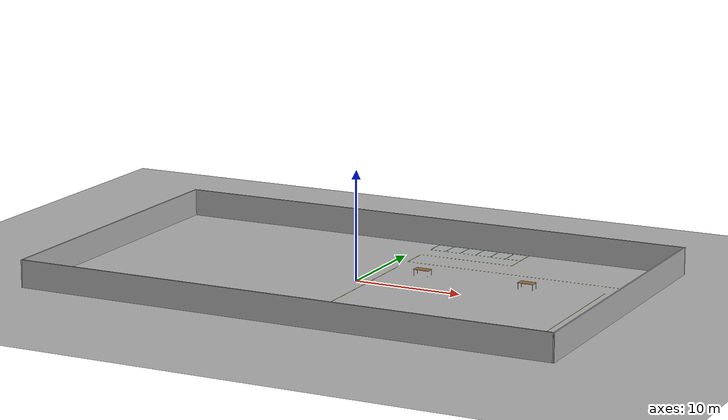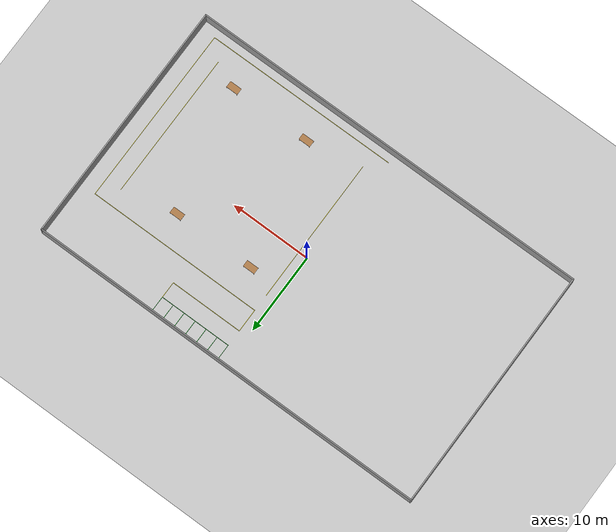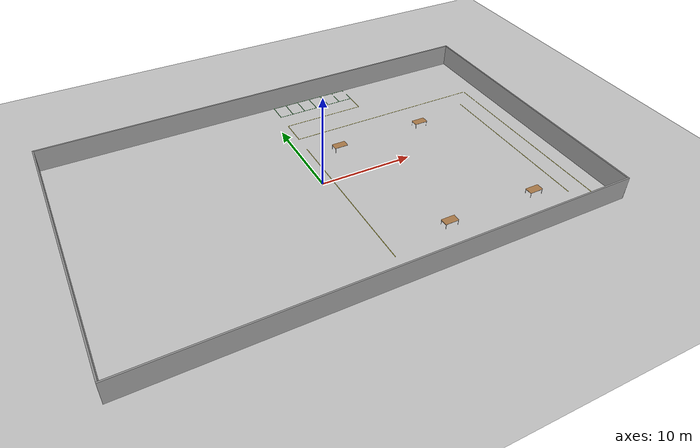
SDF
<sdf version="1.6">
 <world name="default">
  <model name="ground_plane">
   <static>1</static>
   <link name="link">
    <collision name="collision">
     <geometry><plane><normal>0 0 1</normal><size>100 100</size></plane></geometry>
     <surface><friction><ode><mu>100</mu><mu2>50</mu2></ode></friction></surface>
    </collision>
    <visual name="visual">
     <cast_shadows>0</cast_shadows>
     <geometry><plane><normal>0 0 1</normal><size>100 100</size></plane></geometry>
     <material>
      <script><uri>file://media/materials/scripts/gazebo.material</uri><name>Gazebo/Grey</name></script>
     </material>
    </visual>
   </link>
  </model>
  <model name="factoryWall">
   <link name="Wall_0">
    <collision name="Wall_0_Collision">
     <geometry><box><size>30.15 0.15 2.5</size></box></geometry>
     <pose>0 0 1.25 0 -0 0</pose>
    </collision>
    <visual name="Wall_0_Visual">
     <pose>0 0 1.25 0 -0 0</pose>
     <geometry><box><size>30.15 0.15 2.5</size></box></geometry>
     <material>
      <script><uri>file://media/materials/scripts/gazebo.material</uri><name>Gazebo/Grey</name></script>
      <ambient>1 1 1 1</ambient>
     </material>
     <meta><layer>0</layer></meta>
    </visual>
    <pose>25 0 0 0 -0 1.5708</pose>
   </link>
   <link name="Wall_2">
    <collision name="Wall_2_Collision">
     <geometry><box><size>30.15 0.15 2.5</size></box></geometry>
     <pose>0 0 1.25 0 -0 0</pose>
    </collision>
    <visual name="Wall_2_Visual">
     <pose>0 0 1.25 0 -0 0</pose>
     <geometry><box><size>30.15 0.15 2.5</size></box></geometry>
     <material>
      <script><uri>file://media/materials/scripts/gazebo.material</uri><name>Gazebo/Grey</name></script>
      <ambient>1 1 1 1</ambient>
     </material>
     <meta><layer>0</layer></meta>
    </visual>
    <pose>-25 0 0 0 -0 1.5708</pose>
   </link>
   <link name="Wall_4">
    <collision name="Wall_4_Collision">
     <geometry><box><size>50.15 0.15 2.5</size></box></geometry>
     <pose>0 0 1.25 0 -0 0</pose>
    </collision>
    <visual name="Wall_4_Visual">
     <pose>0 0 1.25 0 -0 0</pose>
     <geometry><box><size>50.15 0.15 2.5</size></box></geometry>
     <material>
      <script><uri>file://media/materials/scripts/gazebo.material</uri><name>Gazebo/Grey</name></script>
      <ambient>1 1 1 1</ambient>
     </material>
     <meta><layer>0</layer></meta>
    </visual>
    <pose>0 15 0 0 -0 0</pose>
   </link>
   <link name="Wall_6">
    <collision name="Wall_6_Collision">
     <geometry><box><size>50.15 0.15 2.5</size></box></geometry>
     <pose>0 0 1.25 0 -0 0</pose>
    </collision>
    <visual name="Wall_6_Visual">
     <pose>0 0 1.25 0 -0 0</pose>
     <geometry><box><size>50.15 0.15 2.5</size></box></geometry>
     <material>
      <script><uri>file://media/materials/scripts/gazebo.material</uri><name>Gazebo/Grey</name></script>
      <ambient>1 1 1 1</ambient>
     </material>
     <meta><layer>0</layer></meta>
    </visual>
    <pose>0 -15 0 0 -0 0</pose>
   </link>
   <static>1</static>
  </model>
  <model name="line18m_1">
   <link name="link_1">
    <inertial>
     <mass>1</mass>
     <inertia>
      <ixx>0.166667</ixx>
      <ixy>0</ixy>
      <ixz>0</ixz>
      <iyy>0.166667</iyy>
      <iyz>0</iyz>
      <izz>0.166667</izz>
     </inertia>
    </inertial>
    <visual name="visual">
     <geometry><box><size>0.05 18 0.001</size></box></geometry>
     <material>
      <lighting>1</lighting>
      <script><uri>file://media/materials/scripts/gazebo.material</uri><name>Gazebo/Yellow</name></script>
     </material>
    </visual>
    <collision name="collision">
     <geometry><box><size>0.05 18 0.001</size></box></geometry>
     <surface>
      <friction>
       <ode><mu>1</mu><mu2>1</mu2><fdir1>0 0 0</fdir1><slip1>0</slip1><slip2>0</slip2></ode>
       <torsional>
        <coefficient>1</coefficient>
        <patch_radius>0</patch_radius>
        <surface_radius>0</surface_radius>
        <use_patch_radius>1</use_patch_radius>
        <ode><slip>0</slip></ode>
       </torsional>
      </friction>
      <bounce><restitution_coefficient>0</restitution_coefficient><threshold>1e+06</threshold></bounce>
      <contact>
       <collide_without_contact>0</collide_without_contact>
       <collide_without_contact_bitmask>1</collide_without_contact_bitmask>
       <collide_bitmask>1</collide_bitmask>
       <ode>
        <soft_cfm>0</soft_cfm>
        <soft_erp>0.2</soft_erp>
        <kp>1e+13</kp>
        <kd>1</kd>
        <max_vel>0.01</max_vel>
        <min_depth>0</min_depth>
       </ode>
       <bullet>
        <split_impulse>1</split_impulse>
        <split_impulse_penetration_threshold>-0.01</split_impulse_penetration_threshold>
        <soft_cfm>0</soft_cfm>
        <soft_erp>0.2</soft_erp>
        <kp>1e+13</kp>
        <kd>1</kd>
       </bullet>
      </contact>
     </surface>
    </collision>
   </link>
   <static>1</static>
   <pose>1.13446 -2.97176 0 0 -0 0</pose>
  </model>
  <model name="line18m_2">
   <link name="link_1">
    <inertial>
     <mass>1</mass>
     <inertia>
      <ixx>0.166667</ixx>
      <ixy>0</ixy>
      <ixz>0</ixz>
      <iyy>0.166667</iyy>
      <iyz>0</iyz>
      <izz>0.166667</izz>
     </inertia>
    </inertial>
    <visual name="visual">
     <geometry><box><size>0.05 18 0.001</size></box></geometry>
     <material>
      <lighting>1</lighting>
      <script><uri>file://media/materials/scripts/gazebo.material</uri><name>Gazebo/Yellow</name></script>
     </material>
    </visual>
    <collision name="collision">
     <geometry><box><size>0.05 18 0.001</size></box></geometry>
     <surface>
      <friction>
       <ode><mu>1</mu><mu2>1</mu2><fdir1>0 0 0</fdir1><slip1>0</slip1><slip2>0</slip2></ode>
       <torsional>
        <coefficient>1</coefficient>
        <patch_radius>0</patch_radius>
        <surface_radius>0</surface_radius>
        <use_patch_radius>1</use_patch_radius>
        <ode><slip>0</slip></ode>
       </torsional>
      </friction>
      <bounce><restitution_coefficient>0</restitution_coefficient><threshold>1e+06</threshold></bounce>
      <contact>
       <collide_without_contact>0</collide_without_contact>
       <collide_without_contact_bitmask>1</collide_without_contact_bitmask>
       <collide_bitmask>1</collide_bitmask>
       <ode>
        <soft_cfm>0</soft_cfm>
        <soft_erp>0.2</soft_erp>
        <kp>1e+13</kp>
        <kd>1</kd>
        <max_vel>0.01</max_vel>
        <min_depth>0</min_depth>
       </ode>
       <bullet>
        <split_impulse>1</split_impulse>
        <split_impulse_penetration_threshold>-0.01</split_impulse_penetration_threshold>
        <soft_cfm>0</soft_cfm>
        <soft_erp>0.2</soft_erp>
        <kp>1e+13</kp>
        <kd>1</kd>
       </bullet>
      </contact>
     </surface>
    </collision>
   </link>
   <static>1</static>
   <pose>21.0899 -2.96828 0 0 -0 0</pose>
  </model>
  <model name="line2m_4">
   <link name="link_0">
    <inertial>
     <mass>1</mass>
     <inertia>
      <ixx>0.166667</ixx>
      <ixy>0</ixy>
      <ixz>0</ixz>
      <iyy>0.166667</iyy>
      <iyz>0</iyz>
      <izz>0.166667</izz>
     </inertia>
    </inertial>
    <visual name="visual">
     <geometry><box><size>2 0.05 0.001</size></box></geometry>
     <material>
      <lighting>1</lighting>
      <script><uri>file://media/materials/scripts/gazebo.material</uri><name>Gazebo/Yellow</name></script>
     </material>
    </visual>
    <collision name="collision">
     <geometry><box><size>2 0.05 0.001</size></box></geometry>
     <surface>
      <friction>
       <ode><mu>1</mu><mu2>1</mu2><fdir1>0 0 0</fdir1><slip1>0</slip1><slip2>0</slip2></ode>
       <torsional>
        <coefficient>1</coefficient>
        <patch_radius>0</patch_radius>
        <surface_radius>0</surface_radius>
        <use_patch_radius>1</use_patch_radius>
        <ode><slip>0</slip></ode>
       </torsional>
      </friction>
      <bounce><restitution_coefficient>0</restitution_coefficient><threshold>1e+06</threshold></bounce>
      <contact>
       <collide_without_contact>0</collide_without_contact>
       <collide_without_contact_bitmask>1</collide_without_contact_bitmask>
       <collide_bitmask>1</collide_bitmask>
       <ode>
        <soft_cfm>0</soft_cfm>
        <soft_erp>0.2</soft_erp>
        <kp>1e+13</kp>
        <kd>1</kd>
        <max_vel>0.01</max_vel>
        <min_depth>0</min_depth>
       </ode>
       <bullet>
        <split_impulse>1</split_impulse>
        <split_impulse_penetration_threshold>-0.01</split_impulse_penetration_threshold>
        <soft_cfm>0</soft_cfm>
        <soft_erp>0.2</soft_erp>
        <kp>1e+13</kp>
        <kd>1</kd>
       </bullet>
      </contact>
     </surface>
    </collision>
   </link>
   <static>1</static>
   <pose>0.123613 -13.9727 0 0 -0 0</pose>
  </model>
  <model name="line22m_0">
   <link name="link_2">
    <inertial>
     <mass>1</mass>
     <inertia>
      <ixx>0.166667</ixx>
      <ixy>0</ixy>
      <ixz>0</ixz>
      <iyy>0.166667</iyy>
      <iyz>0</iyz>
      <izz>0.166667</izz>
     </inertia>
    </inertial>
    <visual name="visual">
     <geometry><box><size>0.05 22 0.001</size></box></geometry>
     <material>
      <lighting>1</lighting>
      <script><uri>file://media/materials/scripts/gazebo.material</uri><name>Gazebo/Yellow</name></script>
     </material>
    </visual>
    <collision name="collision">
     <geometry><box><size>0.05 22 0.001</size></box></geometry>
     <surface>
      <friction>
       <ode><mu>1</mu><mu2>1</mu2><fdir1>0 0 0</fdir1><slip1>0</slip1><slip2>0</slip2></ode>
       <torsional>
        <coefficient>1</coefficient>
        <patch_radius>0</patch_radius>
        <surface_radius>0</surface_radius>
        <use_patch_radius>1</use_patch_radius>
        <ode><slip>0</slip></ode>
       </torsional>
      </friction>
      <bounce><restitution_coefficient>0</restitution_coefficient><threshold>1e+06</threshold></bounce>
      <contact>
       <collide_without_contact>0</collide_without_contact>
       <collide_without_contact_bitmask>1</collide_without_contact_bitmask>
       <collide_bitmask>1</collide_bitmask>
       <ode>
        <soft_cfm>0</soft_cfm>
        <soft_erp>0.2</soft_erp>
        <kp>1e+13</kp>
        <kd>1</kd>
        <max_vel>0.01</max_vel>
        <min_depth>0</min_depth>
       </ode>
       <bullet>
        <split_impulse>1</split_impulse>
        <split_impulse_penetration_threshold>-0.01</split_impulse_penetration_threshold>
        <soft_cfm>0</soft_cfm>
        <soft_erp>0.2</soft_erp>
        <kp>1e+13</kp>
        <kd>1</kd>
       </bullet>
      </contact>
     </surface>
    </collision>
   </link>
   <static>1</static>
   <pose>12.1233 -13.9726 0 0 -0 1.5708</pose>
  </model>
  <model name="line22m_1">
   <link name="link_2">
    <inertial>
     <mass>1</mass>
     <inertia>
      <ixx>0.166667</ixx>
      <ixy>0</ixy>
      <ixz>0</ixz>
      <iyy>0.166667</iyy>
      <iyz>0</iyz>
      <izz>0.166667</izz>
     </inertia>
    </inertial>
    <visual name="visual">
     <geometry><box><size>0.05 22 0.001</size></box></geometry>
     <material>
      <lighting>1</lighting>
      <script><uri>file://media/materials/scripts/gazebo.material</uri><name>Gazebo/Yellow</name></script>
     </material>
    </visual>
    <collision name="collision">
     <geometry><box><size>0.05 22 0.001</size></box></geometry>
     <surface>
      <friction>
       <ode><mu>1</mu><mu2>1</mu2><fdir1>0 0 0</fdir1><slip1>0</slip1><slip2>0</slip2></ode>
       <torsional>
        <coefficient>1</coefficient>
        <patch_radius>0</patch_radius>
        <surface_radius>0</surface_radius>
        <use_patch_radius>1</use_patch_radius>
        <ode><slip>0</slip></ode>
       </torsional>
      </friction>
      <bounce><restitution_coefficient>0</restitution_coefficient><threshold>1e+06</threshold></bounce>
      <contact>
       <collide_without_contact>0</collide_without_contact>
       <collide_without_contact_bitmask>1</collide_without_contact_bitmask>
       <collide_bitmask>1</collide_bitmask>
       <ode>
        <soft_cfm>0</soft_cfm>
        <soft_erp>0.2</soft_erp>
        <kp>1e+13</kp>
        <kd>1</kd>
        <max_vel>0.01</max_vel>
        <min_depth>0</min_depth>
       </ode>
       <bullet>
        <split_impulse>1</split_impulse>
        <split_impulse_penetration_threshold>-0.01</split_impulse_penetration_threshold>
        <soft_cfm>0</soft_cfm>
        <soft_erp>0.2</soft_erp>
        <kp>1e+13</kp>
        <kd>1</kd>
       </bullet>
      </contact>
     </surface>
    </collision>
   </link>
   <static>1</static>
   <pose>23.0982 -2.94755 0 0 -0 0</pose>
  </model>
  <model name="line22m_2">
   <link name="link_2">
    <inertial>
     <mass>1</mass>
     <inertia>
      <ixx>0.166667</ixx>
      <ixy>0</ixy>
      <ixz>0</ixz>
      <iyy>0.166667</iyy>
      <iyz>0</iyz>
      <izz>0.166667</izz>
     </inertia>
    </inertial>
    <visual name="visual">
     <geometry><box><size>0.05 22 0.001</size></box></geometry>
     <material>
      <lighting>1</lighting>
      <script><uri>file://media/materials/scripts/gazebo.material</uri><name>Gazebo/Yellow</name></script>
     </material>
    </visual>
    <collision name="collision">
     <geometry><box><size>0.05 22 0.001</size></box></geometry>
     <surface>
      <friction>
       <ode><mu>1</mu><mu2>1</mu2><fdir1>0 0 0</fdir1><slip1>0</slip1><slip2>0</slip2></ode>
       <torsional>
        <coefficient>1</coefficient>
        <patch_radius>0</patch_radius>
        <surface_radius>0</surface_radius>
        <use_patch_radius>1</use_patch_radius>
        <ode><slip>0</slip></ode>
       </torsional>
      </friction>
      <bounce><restitution_coefficient>0</restitution_coefficient><threshold>1e+06</threshold></bounce>
      <contact>
       <collide_without_contact>0</collide_without_contact>
       <collide_without_contact_bitmask>1</collide_without_contact_bitmask>
       <collide_bitmask>1</collide_bitmask>
       <ode>
        <soft_cfm>0</soft_cfm>
        <soft_erp>0.2</soft_erp>
        <kp>1e+13</kp>
        <kd>1</kd>
        <max_vel>0.01</max_vel>
        <min_depth>0</min_depth>
       </ode>
       <bullet>
        <split_impulse>1</split_impulse>
        <split_impulse_penetration_threshold>-0.01</split_impulse_penetration_threshold>
        <soft_cfm>0</soft_cfm>
        <soft_erp>0.2</soft_erp>
        <kp>1e+13</kp>
        <kd>1</kd>
       </bullet>
      </contact>
     </surface>
    </collision>
   </link>
   <static>1</static>
   <pose>12.1232 8.07731 0 0 -0 1.5708</pose>
  </model>
  <model name="batteryStation">
   <link name="link_3">
    <inertial>
     <mass>1</mass>
     <inertia>
      <ixx>0.166667</ixx>
      <ixy>0</ixy>
      <ixz>0</ixz>
      <iyy>0.166667</iyy>
      <iyz>0</iyz>
      <izz>0.166667</izz>
     </inertia>
    </inertial>
    <visual name="visual">
     <pose>1 0 0 0 -0 0</pose>
     <geometry><box><size>0.05 9.05 0.001</size></box></geometry>
     <material>
      <lighting>1</lighting>
      <script><uri>file://media/materials/scripts/gazebo.material</uri><name>Gazebo/Green</name></script>
     </material>
    </visual>
    <visual name="ModelPreview_6::link_3::visual_1">
     <pose>-1 0 0 0 -0 0</pose>
     <geometry><box><size>0.05 9.05 0.001</size></box></geometry>
     <material>
      <lighting>1</lighting>
      <script><uri>file://media/materials/scripts/gazebo.material</uri><name>Gazebo/Green</name></script>
     </material>
    </visual>
    <visual name="ModelPreview_6::link_3::visual_2">
     <pose>0 4.5 0 0 -0 0</pose>
     <geometry><box><size>2 0.05 0.001</size></box></geometry>
     <material>
      <lighting>1</lighting>
      <script><uri>file://media/materials/scripts/gazebo.material</uri><name>Gazebo/Green</name></script>
     </material>
    </visual>
    <visual name="ModelPreview_6::link_3::visual_3">
     <pose>0 -4.5 0 0 -0 0</pose>
     <geometry><box><size>2 0.05 0.001</size></box></geometry>
     <material>
      <lighting>1</lighting>
      <script><uri>file://media/materials/scripts/gazebo.material</uri><name>Gazebo/Green</name></script>
     </material>
    </visual>
    <visual name="ModelPreview_6::link_3::visual_4">
     <pose>0 -3 0 0 -0 0</pose>
     <geometry><box><size>2 0.05 0.001</size></box></geometry>
     <material>
      <lighting>1</lighting>
      <script><uri>file://media/materials/scripts/gazebo.material</uri><name>Gazebo/Green</name></script>
     </material>
    </visual>
    <visual name="ModelPreview_6::link_3::visual_5">
     <pose>0 -1.5 0 0 -0 0</pose>
     <geometry><box><size>2 0.05 0.001</size></box></geometry>
     <material>
      <lighting>1</lighting>
      <script><uri>file://media/materials/scripts/gazebo.material</uri><name>Gazebo/Green</name></script>
     </material>
    </visual>
    <visual name="ModelPreview_6::link_3::visual_6">
     <geometry><box><size>2 0.05 0.001</size></box></geometry>
     <material>
      <lighting>1</lighting>
      <script><uri>file://media/materials/scripts/gazebo.material</uri><name>Gazebo/Green</name></script>
     </material>
    </visual>
    <visual name="ModelPreview_6::link_3::visual_7">
     <pose>0 1.5 0 0 -0 0</pose>
     <geometry><box><size>2 0.05 0.001</size></box></geometry>
     <material>
      <lighting>1</lighting>
      <script><uri>file://media/materials/scripts/gazebo.material</uri><name>Gazebo/Green</name></script>
     </material>
    </visual>
    <visual name="ModelPreview_6::link_3::visual_8">
     <pose>0 3 0 0 -0 0</pose>
     <geometry><box><size>2 0.05 0.001</size></box></geometry>
     <material>
      <lighting>1</lighting>
      <script><uri>file://media/materials/scripts/gazebo.material</uri><name>Gazebo/Green</name></script>
     </material>
    </visual>
    <collision name="collision">
     <pose>1 0 0 0 -0 0</pose>
     <geometry><box><size>0.05 9 0.001</size></box></geometry>
     <surface>
      <friction>
       <ode><mu>1</mu><mu2>1</mu2><fdir1>0 0 0</fdir1><slip1>0</slip1><slip2>0</slip2></ode>
       <torsional>
        <coefficient>1</coefficient>
        <patch_radius>0</patch_radius>
        <surface_radius>0</surface_radius>
        <use_patch_radius>1</use_patch_radius>
        <ode><slip>0</slip></ode>
       </torsional>
      </friction>
      <bounce><restitution_coefficient>0</restitution_coefficient><threshold>1e+06</threshold></bounce>
      <contact>
       <collide_without_contact>0</collide_without_contact>
       <collide_without_contact_bitmask>1</collide_without_contact_bitmask>
       <collide_bitmask>1</collide_bitmask>
       <ode>
        <soft_cfm>0</soft_cfm>
        <soft_erp>0.2</soft_erp>
        <kp>1e+13</kp>
        <kd>1</kd>
        <max_vel>0.01</max_vel>
        <min_depth>0</min_depth>
       </ode>
       <bullet>
        <split_impulse>1</split_impulse>
        <split_impulse_penetration_threshold>-0.01</split_impulse_penetration_threshold>
        <soft_cfm>0</soft_cfm>
        <soft_erp>0.2</soft_erp>
        <kp>1e+13</kp>
        <kd>1</kd>
       </bullet>
      </contact>
     </surface>
    </collision>
    <collision name="collision_1">
     <pose>-1 0 0 0 -0 0</pose>
     <geometry><box><size>0.05 9 0.001</size></box></geometry>
     <surface>
      <friction>
       <ode><mu>1</mu><mu2>1</mu2><fdir1>0 0 0</fdir1><slip1>0</slip1><slip2>0</slip2></ode>
       <torsional>
        <coefficient>1</coefficient>
        <patch_radius>0</patch_radius>
        <surface_radius>0</surface_radius>
        <use_patch_radius>1</use_patch_radius>
        <ode><slip>0</slip></ode>
       </torsional>
      </friction>
      <bounce><restitution_coefficient>0</restitution_coefficient><threshold>1e+06</threshold></bounce>
      <contact>
       <collide_without_contact>0</collide_without_contact>
       <collide_without_contact_bitmask>1</collide_without_contact_bitmask>
       <collide_bitmask>1</collide_bitmask>
       <ode>
        <soft_cfm>0</soft_cfm>
        <soft_erp>0.2</soft_erp>
        <kp>1e+13</kp>
        <kd>1</kd>
        <max_vel>0.01</max_vel>
        <min_depth>0</min_depth>
       </ode>
       <bullet>
        <split_impulse>1</split_impulse>
        <split_impulse_penetration_threshold>-0.01</split_impulse_penetration_threshold>
        <soft_cfm>0</soft_cfm>
        <soft_erp>0.2</soft_erp>
        <kp>1e+13</kp>
        <kd>1</kd>
       </bullet>
      </contact>
     </surface>
    </collision>
    <collision name="collision_2">
     <pose>0 4.5 0 0 -0 0</pose>
     <geometry><box><size>2 0.05 0.001</size></box></geometry>
     <surface>
      <friction>
       <ode><mu>1</mu><mu2>1</mu2><fdir1>0 0 0</fdir1><slip1>0</slip1><slip2>0</slip2></ode>
       <torsional>
        <coefficient>1</coefficient>
        <patch_radius>0</patch_radius>
        <surface_radius>0</surface_radius>
        <use_patch_radius>1</use_patch_radius>
        <ode><slip>0</slip></ode>
       </torsional>
      </friction>
      <bounce><restitution_coefficient>0</restitution_coefficient><threshold>1e+06</threshold></bounce>
      <contact>
       <collide_without_contact>0</collide_without_contact>
       <collide_without_contact_bitmask>1</collide_without_contact_bitmask>
       <collide_bitmask>1</collide_bitmask>
       <ode>
        <soft_cfm>0</soft_cfm>
        <soft_erp>0.2</soft_erp>
        <kp>1e+13</kp>
        <kd>1</kd>
        <max_vel>0.01</max_vel>
        <min_depth>0</min_depth>
       </ode>
       <bullet>
        <split_impulse>1</split_impulse>
        <split_impulse_penetration_threshold>-0.01</split_impulse_penetration_threshold>
        <soft_cfm>0</soft_cfm>
        <soft_erp>0.2</soft_erp>
        <kp>1e+13</kp>
        <kd>1</kd>
       </bullet>
      </contact>
     </surface>
    </collision>
    <collision name="collision_3">
     <pose>0 3 0 0 -0 0</pose>
     <geometry><box><size>2 0.05 0.001</size></box></geometry>
     <surface>
      <friction>
       <ode><mu>1</mu><mu2>1</mu2><fdir1>0 0 0</fdir1><slip1>0</slip1><slip2>0</slip2></ode>
       <torsional>
        <coefficient>1</coefficient>
        <patch_radius>0</patch_radius>
        <surface_radius>0</surface_radius>
        <use_patch_radius>1</use_patch_radius>
        <ode><slip>0</slip></ode>
       </torsional>
      </friction>
      <bounce><restitution_coefficient>0</restitution_coefficient><threshold>1e+06</threshold></bounce>
      <contact>
       <collide_without_contact>0</collide_without_contact>
       <collide_without_contact_bitmask>1</collide_without_contact_bitmask>
       <collide_bitmask>1</collide_bitmask>
       <ode>
        <soft_cfm>0</soft_cfm>
        <soft_erp>0.2</soft_erp>
        <kp>1e+13</kp>
        <kd>1</kd>
        <max_vel>0.01</max_vel>
        <min_depth>0</min_depth>
       </ode>
       <bullet>
        <split_impulse>1</split_impulse>
        <split_impulse_penetration_threshold>-0.01</split_impulse_penetration_threshold>
        <soft_cfm>0</soft_cfm>
        <soft_erp>0.2</soft_erp>
        <kp>1e+13</kp>
        <kd>1</kd>
       </bullet>
      </contact>
     </surface>
    </collision>
    <collision name="collision_4">
     <pose>0 1.5 0 0 -0 0</pose>
     <geometry><box><size>2 0.05 0.001</size></box></geometry>
     <surface>
      <friction>
       <ode><mu>1</mu><mu2>1</mu2><fdir1>0 0 0</fdir1><slip1>0</slip1><slip2>0</slip2></ode>
       <torsional>
        <coefficient>1</coefficient>
        <patch_radius>0</patch_radius>
        <surface_radius>0</surface_radius>
        <use_patch_radius>1</use_patch_radius>
        <ode><slip>0</slip></ode>
       </torsional>
      </friction>
      <bounce><restitution_coefficient>0</restitution_coefficient><threshold>1e+06</threshold></bounce>
      <contact>
       <collide_without_contact>0</collide_without_contact>
       <collide_without_contact_bitmask>1</collide_without_contact_bitmask>
       <collide_bitmask>1</collide_bitmask>
       <ode>
        <soft_cfm>0</soft_cfm>
        <soft_erp>0.2</soft_erp>
        <kp>1e+13</kp>
        <kd>1</kd>
        <max_vel>0.01</max_vel>
        <min_depth>0</min_depth>
       </ode>
       <bullet>
        <split_impulse>1</split_impulse>
        <split_impulse_penetration_threshold>-0.01</split_impulse_penetration_threshold>
        <soft_cfm>0</soft_cfm>
        <soft_erp>0.2</soft_erp>
        <kp>1e+13</kp>
        <kd>1</kd>
       </bullet>
      </contact>
     </surface>
    </collision>
    <collision name="collision_5">
     <geometry><box><size>2 0.05 0.001</size></box></geometry>
     <surface>
      <friction>
       <ode><mu>1</mu><mu2>1</mu2><fdir1>0 0 0</fdir1><slip1>0</slip1><slip2>0</slip2></ode>
       <torsional>
        <coefficient>1</coefficient>
        <patch_radius>0</patch_radius>
        <surface_radius>0</surface_radius>
        <use_patch_radius>1</use_patch_radius>
        <ode><slip>0</slip></ode>
       </torsional>
      </friction>
      <bounce><restitution_coefficient>0</restitution_coefficient><threshold>1e+06</threshold></bounce>
      <contact>
       <collide_without_contact>0</collide_without_contact>
       <collide_without_contact_bitmask>1</collide_without_contact_bitmask>
       <collide_bitmask>1</collide_bitmask>
       <ode>
        <soft_cfm>0</soft_cfm>
        <soft_erp>0.2</soft_erp>
        <kp>1e+13</kp>
        <kd>1</kd>
        <max_vel>0.01</max_vel>
        <min_depth>0</min_depth>
       </ode>
       <bullet>
        <split_impulse>1</split_impulse>
        <split_impulse_penetration_threshold>-0.01</split_impulse_penetration_threshold>
        <soft_cfm>0</soft_cfm>
        <soft_erp>0.2</soft_erp>
        <kp>1e+13</kp>
        <kd>1</kd>
       </bullet>
      </contact>
     </surface>
    </collision>
    <collision name="collision_6">
     <pose>0 -1.5 0 0 -0 0</pose>
     <geometry><box><size>2 0.05 0.001</size></box></geometry>
     <surface>
      <friction>
       <ode><mu>1</mu><mu2>1</mu2><fdir1>0 0 0</fdir1><slip1>0</slip1><slip2>0</slip2></ode>
       <torsional>
        <coefficient>1</coefficient>
        <patch_radius>0</patch_radius>
        <surface_radius>0</surface_radius>
        <use_patch_radius>1</use_patch_radius>
        <ode><slip>0</slip></ode>
       </torsional>
      </friction>
      <bounce><restitution_coefficient>0</restitution_coefficient><threshold>1e+06</threshold></bounce>
      <contact>
       <collide_without_contact>0</collide_without_contact>
       <collide_without_contact_bitmask>1</collide_without_contact_bitmask>
       <collide_bitmask>1</collide_bitmask>
       <ode>
        <soft_cfm>0</soft_cfm>
        <soft_erp>0.2</soft_erp>
        <kp>1e+13</kp>
        <kd>1</kd>
        <max_vel>0.01</max_vel>
        <min_depth>0</min_depth>
       </ode>
       <bullet>
        <split_impulse>1</split_impulse>
        <split_impulse_penetration_threshold>-0.01</split_impulse_penetration_threshold>
        <soft_cfm>0</soft_cfm>
        <soft_erp>0.2</soft_erp>
        <kp>1e+13</kp>
        <kd>1</kd>
       </bullet>
      </contact>
     </surface>
    </collision>
    <collision name="collision_7">
     <pose>0 -3 0 0 -0 0</pose>
     <geometry><box><size>2 0.05 0.001</size></box></geometry>
     <surface>
      <friction>
       <ode><mu>1</mu><mu2>1</mu2><fdir1>0 0 0</fdir1><slip1>0</slip1><slip2>0</slip2></ode>
       <torsional>
        <coefficient>1</coefficient>
        <patch_radius>0</patch_radius>
        <surface_radius>0</surface_radius>
        <use_patch_radius>1</use_patch_radius>
        <ode><slip>0</slip></ode>
       </torsional>
      </friction>
      <bounce><restitution_coefficient>0</restitution_coefficient><threshold>1e+06</threshold></bounce>
      <contact>
       <collide_without_contact>0</collide_without_contact>
       <collide_without_contact_bitmask>1</collide_without_contact_bitmask>
       <collide_bitmask>1</collide_bitmask>
       <ode>
        <soft_cfm>0</soft_cfm>
        <soft_erp>0.2</soft_erp>
        <kp>1e+13</kp>
        <kd>1</kd>
        <max_vel>0.01</max_vel>
        <min_depth>0</min_depth>
       </ode>
       <bullet>
        <split_impulse>1</split_impulse>
        <split_impulse_penetration_threshold>-0.01</split_impulse_penetration_threshold>
        <soft_cfm>0</soft_cfm>
        <soft_erp>0.2</soft_erp>
        <kp>1e+13</kp>
        <kd>1</kd>
       </bullet>
      </contact>
     </surface>
    </collision>
    <collision name="collision_8">
     <pose>0 -4.5 0 0 -0 0</pose>
     <geometry><box><size>2 0.05 0.001</size></box></geometry>
     <surface>
      <friction>
       <ode><mu>1</mu><mu2>1</mu2><fdir1>0 0 0</fdir1><slip1>0</slip1><slip2>0</slip2></ode>
       <torsional>
        <coefficient>1</coefficient>
        <patch_radius>0</patch_radius>
        <surface_radius>0</surface_radius>
        <use_patch_radius>1</use_patch_radius>
        <ode><slip>0</slip></ode>
       </torsional>
      </friction>
      <bounce><restitution_coefficient>0</restitution_coefficient><threshold>1e+06</threshold></bounce>
      <contact>
       <collide_without_contact>0</collide_without_contact>
       <collide_without_contact_bitmask>1</collide_without_contact_bitmask>
       <collide_bitmask>1</collide_bitmask>
       <ode>
        <soft_cfm>0</soft_cfm>
        <soft_erp>0.2</soft_erp>
        <kp>1e+13</kp>
        <kd>1</kd>
        <max_vel>0.01</max_vel>
        <min_depth>0</min_depth>
       </ode>
       <bullet>
        <split_impulse>1</split_impulse>
        <split_impulse_penetration_threshold>-0.01</split_impulse_penetration_threshold>
        <soft_cfm>0</soft_cfm>
        <soft_erp>0.2</soft_erp>
        <kp>1e+13</kp>
        <kd>1</kd>
       </bullet>
      </contact>
     </surface>
    </collision>
   </link>
   <static>1</static>
   <pose>5.67091 13.9137 0 0 -0 1.5708</pose>
  </model>
  <model name="line2m_5">
   <link name="link_0">
    <inertial>
     <mass>1</mass>
     <inertia>
      <ixx>0.166667</ixx>
      <ixy>0</ixy>
      <ixz>0</ixz>
      <iyy>0.166667</iyy>
      <iyz>0</iyz>
      <izz>0.166667</izz>
     </inertia>
    </inertial>
    <visual name="visual">
     <geometry><box><size>2 0.05 0.001</size></box></geometry>
     <material>
      <lighting>1</lighting>
      <script><uri>file://media/materials/scripts/gazebo.material</uri><name>Gazebo/Yellow</name></script>
     </material>
    </visual>
    <collision name="collision">
     <geometry><box><size>2 0.05 0.001</size></box></geometry>
     <surface>
      <friction>
       <ode><mu>1</mu><mu2>1</mu2><fdir1>0 0 0</fdir1><slip1>0</slip1><slip2>0</slip2></ode>
       <torsional>
        <coefficient>1</coefficient>
        <patch_radius>0</patch_radius>
        <surface_radius>0</surface_radius>
        <use_patch_radius>1</use_patch_radius>
        <ode><slip>0</slip></ode>
       </torsional>
      </friction>
      <bounce><restitution_coefficient>0</restitution_coefficient><threshold>1e+06</threshold></bounce>
      <contact>
       <collide_without_contact>0</collide_without_contact>
       <collide_without_contact_bitmask>1</collide_without_contact_bitmask>
       <collide_bitmask>1</collide_bitmask>
       <ode>
        <soft_cfm>0</soft_cfm>
        <soft_erp>0.2</soft_erp>
        <kp>1e+13</kp>
        <kd>1</kd>
        <max_vel>0.01</max_vel>
        <min_depth>0</min_depth>
       </ode>
       <bullet>
        <split_impulse>1</split_impulse>
        <split_impulse_penetration_threshold>-0.01</split_impulse_penetration_threshold>
        <soft_cfm>0</soft_cfm>
        <soft_erp>0.2</soft_erp>
        <kp>1e+13</kp>
        <kd>1</kd>
       </bullet>
      </contact>
     </surface>
    </collision>
   </link>
   <static>1</static>
   <pose>1.1489 9.0996 0 0 -0 1.5708</pose>
  </model>
  <model name="line9m">
   <link name="link_1">
    <inertial>
     <mass>1</mass>
     <inertia>
      <ixx>0.166667</ixx>
      <ixy>0</ixy>
      <ixz>0</ixz>
      <iyy>0.166667</iyy>
      <iyz>0</iyz>
      <izz>0.166667</izz>
     </inertia>
    </inertial>
    <visual name="visual">
     <geometry><box><size>9 0.05 0.001</size></box></geometry>
     <material>
      <lighting>1</lighting>
      <script><uri>file://media/materials/scripts/gazebo.material</uri><name>Gazebo/Yellow</name></script>
     </material>
    </visual>
    <collision name="collision">
     <geometry><box><size>9 0.05 0.001</size></box></geometry>
     <surface>
      <friction>
       <ode><mu>1</mu><mu2>1</mu2><fdir1>0 0 0</fdir1><slip1>0</slip1><slip2>0</slip2></ode>
       <torsional>
        <coefficient>1</coefficient>
        <patch_radius>0</patch_radius>
        <surface_radius>0</surface_radius>
        <use_patch_radius>1</use_patch_radius>
        <ode><slip>0</slip></ode>
       </torsional>
      </friction>
      <bounce><restitution_coefficient>0</restitution_coefficient><threshold>1e+06</threshold></bounce>
      <contact>
       <collide_without_contact>0</collide_without_contact>
       <collide_without_contact_bitmask>1</collide_without_contact_bitmask>
       <collide_bitmask>1</collide_bitmask>
       <ode>
        <soft_cfm>0</soft_cfm>
        <soft_erp>0.2</soft_erp>
        <kp>1e+13</kp>
        <kd>1</kd>
        <max_vel>0.01</max_vel>
        <min_depth>0</min_depth>
       </ode>
       <bullet>
        <split_impulse>1</split_impulse>
        <split_impulse_penetration_threshold>-0.01</split_impulse_penetration_threshold>
        <soft_cfm>0</soft_cfm>
        <soft_erp>0.2</soft_erp>
        <kp>1e+13</kp>
        <kd>1</kd>
       </bullet>
      </contact>
     </surface>
    </collision>
   </link>
   <static>1</static>
   <pose>5.67091 10.9169 0 0 -0 0</pose>
  </model>
  <model name="line2m_6">
   <link name="link_0">
    <inertial>
     <mass>1</mass>
     <inertia>
      <ixx>0.166667</ixx>
      <ixy>0</ixy>
      <ixz>0</ixz>
      <iyy>0.166667</iyy>
      <iyz>0</iyz>
      <izz>0.166667</izz>
     </inertia>
    </inertial>
    <visual name="visual">
     <geometry><box><size>2 0.05 0.001</size></box></geometry>
     <material>
      <lighting>1</lighting>
      <script><uri>file://media/materials/scripts/gazebo.material</uri><name>Gazebo/Yellow</name></script>
     </material>
    </visual>
    <collision name="collision">
     <geometry><box><size>2 0.05 0.001</size></box></geometry>
     <surface>
      <friction>
       <ode><mu>1</mu><mu2>1</mu2><fdir1>0 0 0</fdir1><slip1>0</slip1><slip2>0</slip2></ode>
       <torsional>
        <coefficient>1</coefficient>
        <patch_radius>0</patch_radius>
        <surface_radius>0</surface_radius>
        <use_patch_radius>1</use_patch_radius>
        <ode><slip>0</slip></ode>
       </torsional>
      </friction>
      <bounce><restitution_coefficient>0</restitution_coefficient><threshold>1e+06</threshold></bounce>
      <contact>
       <collide_without_contact>0</collide_without_contact>
       <collide_without_contact_bitmask>1</collide_without_contact_bitmask>
       <collide_bitmask>1</collide_bitmask>
       <ode>
        <soft_cfm>0</soft_cfm>
        <soft_erp>0.2</soft_erp>
        <kp>1e+13</kp>
        <kd>1</kd>
        <max_vel>0.01</max_vel>
        <min_depth>0</min_depth>
       </ode>
       <bullet>
        <split_impulse>1</split_impulse>
        <split_impulse_penetration_threshold>-0.01</split_impulse_penetration_threshold>
        <soft_cfm>0</soft_cfm>
        <soft_erp>0.2</soft_erp>
        <kp>1e+13</kp>
        <kd>1</kd>
       </bullet>
      </contact>
     </surface>
    </collision>
   </link>
   <static>1</static>
   <pose>1.14872 9.94185 0 0 -0 1.5708</pose>
  </model>
  <model name="line2m_7">
   <link name="link_0">
    <inertial>
     <mass>1</mass>
     <inertia>
      <ixx>0.166667</ixx>
      <ixy>0</ixy>
      <ixz>0</ixz>
      <iyy>0.166667</iyy>
      <iyz>0</iyz>
      <izz>0.166667</izz>
     </inertia>
    </inertial>
    <visual name="visual">
     <geometry><box><size>2 0.05 0.001</size></box></geometry>
     <material>
      <lighting>1</lighting>
      <script><uri>file://media/materials/scripts/gazebo.material</uri><name>Gazebo/Yellow</name></script>
     </material>
    </visual>
    <collision name="collision">
     <geometry><box><size>2 0.05 0.001</size></box></geometry>
     <surface>
      <friction>
       <ode><mu>1</mu><mu2>1</mu2><fdir1>0 0 0</fdir1><slip1>0</slip1><slip2>0</slip2></ode>
       <torsional>
        <coefficient>1</coefficient>
        <patch_radius>0</patch_radius>
        <surface_radius>0</surface_radius>
        <use_patch_radius>1</use_patch_radius>
        <ode><slip>0</slip></ode>
       </torsional>
      </friction>
      <bounce><restitution_coefficient>0</restitution_coefficient><threshold>1e+06</threshold></bounce>
      <contact>
       <collide_without_contact>0</collide_without_contact>
       <collide_without_contact_bitmask>1</collide_without_contact_bitmask>
       <collide_bitmask>1</collide_bitmask>
       <ode>
        <soft_cfm>0</soft_cfm>
        <soft_erp>0.2</soft_erp>
        <kp>1e+13</kp>
        <kd>1</kd>
        <max_vel>0.01</max_vel>
        <min_depth>0</min_depth>
       </ode>
       <bullet>
        <split_impulse>1</split_impulse>
        <split_impulse_penetration_threshold>-0.01</split_impulse_penetration_threshold>
        <soft_cfm>0</soft_cfm>
        <soft_erp>0.2</soft_erp>
        <kp>1e+13</kp>
        <kd>1</kd>
       </bullet>
      </contact>
     </surface>
    </collision>
   </link>
   <static>1</static>
   <pose>10.1717 11.8912 0 0 -0 1.5708</pose>
  </model>
  <model name="table_1">
   <static>1</static>
   <link name="link">
    <collision name="surface">
     <pose>0 0 1 0 -0 0</pose>
     <geometry><box><size>1.5 0.8 0.03</size></box></geometry>
     <surface><friction><ode><mu>0.6</mu><mu2>0.6</mu2></ode></friction></surface>
    </collision>
    <visual name="visual1">
     <pose>0 0 1 0 -0 0</pose>
     <geometry><box><size>1.5 0.8 0.03</size></box></geometry>
     <material>
      <script><uri>file://media/materials/scripts/gazebo.material</uri><name>Gazebo/Wood</name></script>
     </material>
    </visual>
    <collision name="front_left_leg">
     <pose>0.68 0.38 0.5 0 -0 0</pose>
     <geometry><cylinder><radius>0.02</radius><length>1</length></cylinder></geometry>
    </collision>
    <visual name="front_left_leg">
     <pose>0.68 0.38 0.5 0 -0 0</pose>
     <geometry><cylinder><radius>0.02</radius><length>1</length></cylinder></geometry>
     <material>
      <script><uri>file://media/materials/scripts/gazebo.material</uri><name>Gazebo/Grey</name></script>
     </material>
    </visual>
    <collision name="front_right_leg">
     <pose>0.68 -0.38 0.5 0 -0 0</pose>
     <geometry><cylinder><radius>0.02</radius><length>1</length></cylinder></geometry>
    </collision>
    <visual name="front_right_leg">
     <pose>0.68 -0.38 0.5 0 -0 0</pose>
     <geometry><cylinder><radius>0.02</radius><length>1</length></cylinder></geometry>
     <material>
      <script><uri>file://media/materials/scripts/gazebo.material</uri><name>Gazebo/Grey</name></script>
     </material>
    </visual>
    <collision name="back_right_leg">
     <pose>-0.68 -0.38 0.5 0 -0 0</pose>
     <geometry><cylinder><radius>0.02</radius><length>1</length></cylinder></geometry>
    </collision>
    <visual name="back_right_leg">
     <pose>-0.68 -0.38 0.5 0 -0 0</pose>
     <geometry><cylinder><radius>0.02</radius><length>1</length></cylinder></geometry>
     <material>
      <script><uri>file://media/materials/scripts/gazebo.material</uri><name>Gazebo/Grey</name></script>
     </material>
    </visual>
    <collision name="back_left_leg">
     <pose>-0.68 0.38 0.5 0 -0 0</pose>
     <geometry><cylinder><radius>0.02</radius><length>1</length></cylinder></geometry>
    </collision>
    <visual name="back_left_leg">
     <pose>-0.68 0.38 0.5 0 -0 0</pose>
     <geometry><cylinder><radius>0.02</radius><length>1</length></cylinder></geometry>
     <material>
      <script><uri>file://media/materials/scripts/gazebo.material</uri><name>Gazebo/Grey</name></script>
     </material>
    </visual>
   </link>
   <pose>4.31162 4.54 -0.5 0 -0 0</pose>
  </model>
  <model name="table_2">
   <static>1</static>
   <link name="link">
    <collision name="surface">
     <pose>0 0 1 0 -0 0</pose>
     <geometry><box><size>1.5 0.8 0.03</size></box></geometry>
     <surface><friction><ode><mu>0.6</mu><mu2>0.6</mu2></ode></friction></surface>
    </collision>
    <visual name="visual1">
     <pose>0 0 1 0 -0 0</pose>
     <geometry><box><size>1.5 0.8 0.03</size></box></geometry>
     <material>
      <script><uri>file://media/materials/scripts/gazebo.material</uri><name>Gazebo/Wood</name></script>
     </material>
    </visual>
    <collision name="front_left_leg">
     <pose>0.68 0.38 0.5 0 -0 0</pose>
     <geometry><cylinder><radius>0.02</radius><length>1</length></cylinder></geometry>
    </collision>
    <visual name="front_left_leg">
     <pose>0.68 0.38 0.5 0 -0 0</pose>
     <geometry><cylinder><radius>0.02</radius><length>1</length></cylinder></geometry>
     <material>
      <script><uri>file://media/materials/scripts/gazebo.material</uri><name>Gazebo/Grey</name></script>
     </material>
    </visual>
    <collision name="front_right_leg">
     <pose>0.68 -0.38 0.5 0 -0 0</pose>
     <geometry><cylinder><radius>0.02</radius><length>1</length></cylinder></geometry>
    </collision>
    <visual name="front_right_leg">
     <pose>0.68 -0.38 0.5 0 -0 0</pose>
     <geometry><cylinder><radius>0.02</radius><length>1</length></cylinder></geometry>
     <material>
      <script><uri>file://media/materials/scripts/gazebo.material</uri><name>Gazebo/Grey</name></script>
     </material>
    </visual>
    <collision name="back_right_leg">
     <pose>-0.68 -0.38 0.5 0 -0 0</pose>
     <geometry><cylinder><radius>0.02</radius><length>1</length></cylinder></geometry>
    </collision>
    <visual name="back_right_leg">
     <pose>-0.68 -0.38 0.5 0 -0 0</pose>
     <geometry><cylinder><radius>0.02</radius><length>1</length></cylinder></geometry>
     <material>
      <script><uri>file://media/materials/scripts/gazebo.material</uri><name>Gazebo/Grey</name></script>
     </material>
    </visual>
    <collision name="back_left_leg">
     <pose>-0.68 0.38 0.5 0 -0 0</pose>
     <geometry><cylinder><radius>0.02</radius><length>1</length></cylinder></geometry>
    </collision>
    <visual name="back_left_leg">
     <pose>-0.68 0.38 0.5 0 -0 0</pose>
     <geometry><cylinder><radius>0.02</radius><length>1</length></cylinder></geometry>
     <material>
      <script><uri>file://media/materials/scripts/gazebo.material</uri><name>Gazebo/Grey</name></script>
     </material>
    </visual>
   </link>
   <pose>14.3765 4.54 -0.5 0 -0 0</pose>
  </model>
  <model name="table_5">
   <static>1</static>
   <link name="link">
    <collision name="surface">
     <pose>0 0 1 0 -0 0</pose>
     <geometry><box><size>1.5 0.8 0.03</size></box></geometry>
     <surface><friction><ode><mu>0.6</mu><mu2>0.6</mu2></ode></friction></surface>
    </collision>
    <visual name="visual1">
     <pose>0 0 1 0 -0 0</pose>
     <geometry><box><size>1.5 0.8 0.03</size></box></geometry>
     <material>
      <script><uri>file://media/materials/scripts/gazebo.material</uri><name>Gazebo/Wood</name></script>
     </material>
    </visual>
    <collision name="front_left_leg">
     <pose>0.68 0.38 0.5 0 -0 0</pose>
     <geometry><cylinder><radius>0.02</radius><length>1</length></cylinder></geometry>
    </collision>
    <visual name="front_left_leg">
     <pose>0.68 0.38 0.5 0 -0 0</pose>
     <geometry><cylinder><radius>0.02</radius><length>1</length></cylinder></geometry>
     <material>
      <script><uri>file://media/materials/scripts/gazebo.material</uri><name>Gazebo/Grey</name></script>
     </material>
    </visual>
    <collision name="front_right_leg">
     <pose>0.68 -0.38 0.5 0 -0 0</pose>
     <geometry><cylinder><radius>0.02</radius><length>1</length></cylinder></geometry>
    </collision>
    <visual name="front_right_leg">
     <pose>0.68 -0.38 0.5 0 -0 0</pose>
     <geometry><cylinder><radius>0.02</radius><length>1</length></cylinder></geometry>
     <material>
      <script><uri>file://media/materials/scripts/gazebo.material</uri><name>Gazebo/Grey</name></script>
     </material>
    </visual>
    <collision name="back_right_leg">
     <pose>-0.68 -0.38 0.5 0 -0 0</pose>
     <geometry><cylinder><radius>0.02</radius><length>1</length></cylinder></geometry>
    </collision>
    <visual name="back_right_leg">
     <pose>-0.68 -0.38 0.5 0 -0 0</pose>
     <geometry><cylinder><radius>0.02</radius><length>1</length></cylinder></geometry>
     <material>
      <script><uri>file://media/materials/scripts/gazebo.material</uri><name>Gazebo/Grey</name></script>
     </material>
    </visual>
    <collision name="back_left_leg">
     <pose>-0.68 0.38 0.5 0 -0 0</pose>
     <geometry><cylinder><radius>0.02</radius><length>1</length></cylinder></geometry>
    </collision>
    <visual name="back_left_leg">
     <pose>-0.68 0.38 0.5 0 -0 0</pose>
     <geometry><cylinder><radius>0.02</radius><length>1</length></cylinder></geometry>
     <material>
      <script><uri>file://media/materials/scripts/gazebo.material</uri><name>Gazebo/Grey</name></script>
     </material>
    </visual>
   </link>
   <pose>7.87455 -10.54 -0.5 0 -0 0</pose>
  </model>
  <model name="table_6">
   <static>1</static>
   <link name="link">
    <collision name="surface">
     <pose>0 0 1 0 -0 0</pose>
     <geometry><box><size>1.5 0.8 0.03</size></box></geometry>
     <surface><friction><ode><mu>0.6</mu><mu2>0.6</mu2></ode></friction></surface>
    </collision>
    <visual name="visual1">
     <pose>0 0 1 0 -0 0</pose>
     <geometry><box><size>1.5 0.8 0.03</size></box></geometry>
     <material>
      <script><uri>file://media/materials/scripts/gazebo.material</uri><name>Gazebo/Wood</name></script>
     </material>
    </visual>
    <collision name="front_left_leg">
     <pose>0.68 0.38 0.5 0 -0 0</pose>
     <geometry><cylinder><radius>0.02</radius><length>1</length></cylinder></geometry>
    </collision>
    <visual name="front_left_leg">
     <pose>0.68 0.38 0.5 0 -0 0</pose>
     <geometry><cylinder><radius>0.02</radius><length>1</length></cylinder></geometry>
     <material>
      <script><uri>file://media/materials/scripts/gazebo.material</uri><name>Gazebo/Grey</name></script>
     </material>
    </visual>
    <collision name="front_right_leg">
     <pose>0.68 -0.38 0.5 0 -0 0</pose>
     <geometry><cylinder><radius>0.02</radius><length>1</length></cylinder></geometry>
    </collision>
    <visual name="front_right_leg">
     <pose>0.68 -0.38 0.5 0 -0 0</pose>
     <geometry><cylinder><radius>0.02</radius><length>1</length></cylinder></geometry>
     <material>
      <script><uri>file://media/materials/scripts/gazebo.material</uri><name>Gazebo/Grey</name></script>
     </material>
    </visual>
    <collision name="back_right_leg">
     <pose>-0.68 -0.38 0.5 0 -0 0</pose>
     <geometry><cylinder><radius>0.02</radius><length>1</length></cylinder></geometry>
    </collision>
    <visual name="back_right_leg">
     <pose>-0.68 -0.38 0.5 0 -0 0</pose>
     <geometry><cylinder><radius>0.02</radius><length>1</length></cylinder></geometry>
     <material>
      <script><uri>file://media/materials/scripts/gazebo.material</uri><name>Gazebo/Grey</name></script>
     </material>
    </visual>
    <collision name="back_left_leg">
     <pose>-0.68 0.38 0.5 0 -0 0</pose>
     <geometry><cylinder><radius>0.02</radius><length>1</length></cylinder></geometry>
    </collision>
    <visual name="back_left_leg">
     <pose>-0.68 0.38 0.5 0 -0 0</pose>
     <geometry><cylinder><radius>0.02</radius><length>1</length></cylinder></geometry>
     <material>
      <script><uri>file://media/materials/scripts/gazebo.material</uri><name>Gazebo/Grey</name></script>
     </material>
    </visual>
   </link>
   <pose>17.8503 -10.54 -0.5 0 -0 0</pose>
  </model>
 </world>
</sdf>
